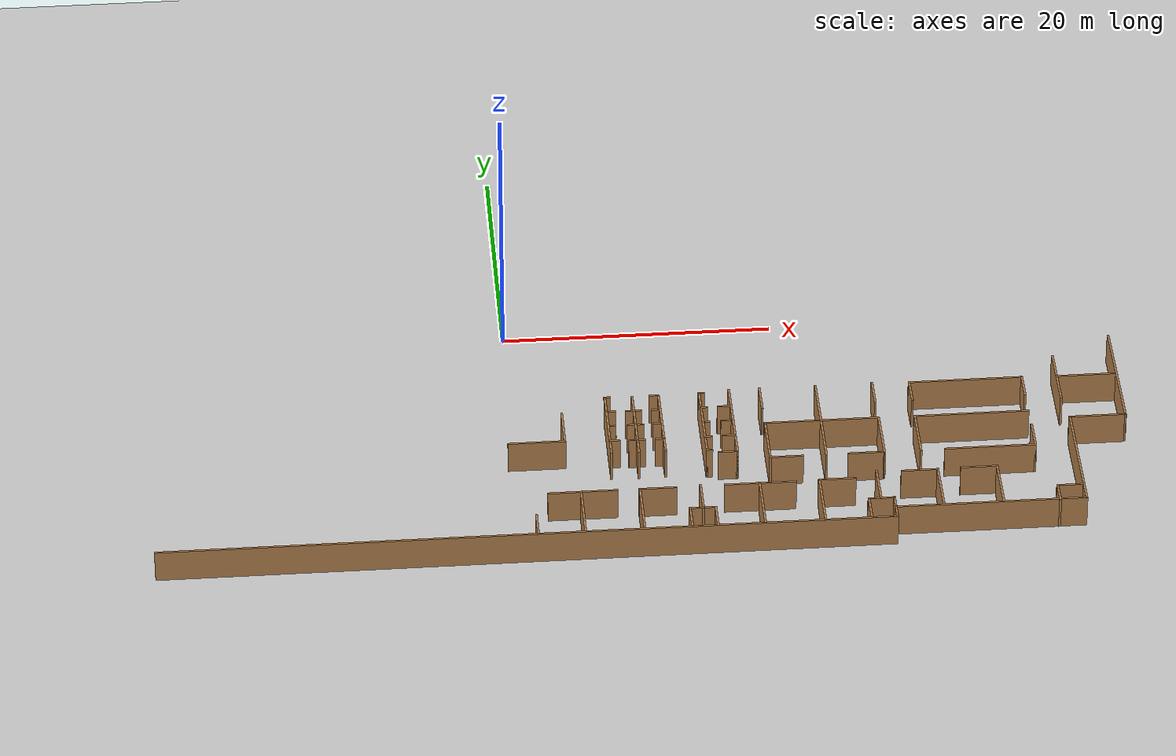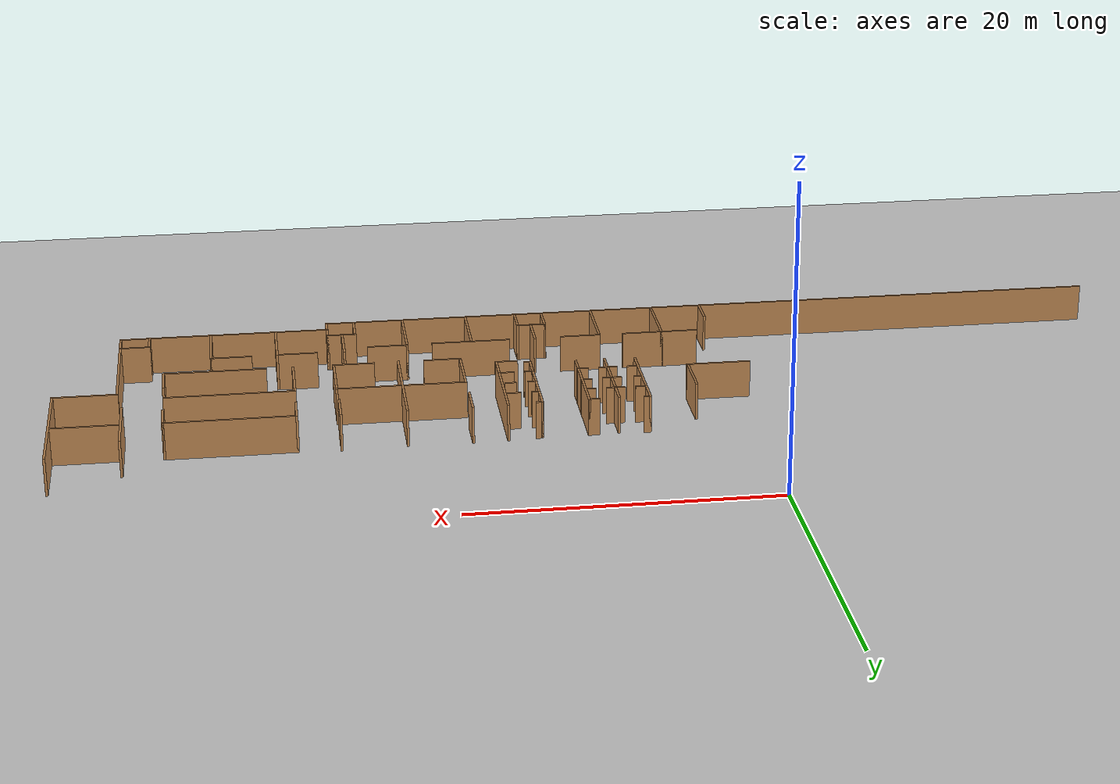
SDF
<sdf version="1.6">
 <world name="default">
  <model name="ground_plane">
   <static>1</static>
   <link name="link">
    <collision name="collision">
     <geometry><plane><normal>0 0 1</normal><size>100 100</size></plane></geometry>
     <surface><friction><ode><mu>100</mu><mu2>50</mu2></ode></friction></surface>
    </collision>
    <visual name="visual">
     <cast_shadows>0</cast_shadows>
     <geometry><plane><normal>0 0 1</normal><size>100 100</size></plane></geometry>
     <material>
      <script><uri>file://media/materials/scripts/gazebo.material</uri><name>Gazebo/Grey</name></script>
     </material>
    </visual>
   </link>
  </model>
  <model name="floor_plan">
   <link name="Wall_16">
    <collision name="Wall_16_Collision">
     <geometry><box><size>9.75 0.15 2.5</size></box></geometry>
     <pose>0 0 1.25 0 -0 0</pose>
    </collision>
    <visual name="Wall_16_Visual">
     <pose>0 0 1.25 0 -0 0</pose>
     <geometry><box><size>9.75 0.15 2.5</size></box></geometry>
     <material>
      <script><uri>file://media/materials/scripts/gazebo.material</uri><name>Gazebo/Wood</name></script>
      <ambient>1 1 1 1</ambient>
     </material>
    </visual>
    <pose>44.75 -10.9786 0 0 0 -1.5708</pose>
   </link>
   <link name="Wall_17">
    <collision name="Wall_17_Collision">
     <geometry><box><size>4.25 0.15 2.5</size></box></geometry>
     <pose>0 0 1.25 0 -0 0</pose>
    </collision>
    <visual name="Wall_17_Visual">
     <pose>0 0 1.25 0 -0 0</pose>
     <geometry><box><size>4.25 0.15 2.5</size></box></geometry>
     <material>
      <script><uri>file://media/materials/scripts/gazebo.material</uri><name>Gazebo/Wood</name></script>
      <ambient>1 1 1 1</ambient>
     </material>
    </visual>
    <pose>42.7 -15.7786 0 0 -0 3.14159</pose>
   </link>
   <link name="Wall_18">
    <collision name="Wall_18_Collision">
     <geometry><box><size>9.75 0.15 2.5</size></box></geometry>
     <pose>0 0 1.25 0 -0 0</pose>
    </collision>
    <visual name="Wall_18_Visual">
     <pose>0 0 1.25 0 -0 0</pose>
     <geometry><box><size>9.75 0.15 2.5</size></box></geometry>
     <material>
      <script><uri>file://media/materials/scripts/gazebo.material</uri><name>Gazebo/Wood</name></script>
      <ambient>1 1 1 1</ambient>
     </material>
    </visual>
    <pose>40.65 -20.5786 0 0 0 -1.5708</pose>
   </link>
   <link name="Wall_19">
    <collision name="Wall_19_Collision">
     <geometry><box><size>14 0.15 2.5</size></box></geometry>
     <pose>0 0 1.25 0 -0 0</pose>
    </collision>
    <visual name="Wall_19_Visual">
     <pose>0 0 1.25 0 -0 0</pose>
     <geometry><box><size>14 0.15 2.5</size></box></geometry>
     <material>
      <script><uri>file://media/materials/scripts/gazebo.material</uri><name>Gazebo/Wood</name></script>
      <ambient>1 1 1 1</ambient>
     </material>
    </visual>
    <pose>33.725 -25.3786 0 0 -0 3.14159</pose>
   </link>
   <link name="Wall_20">
    <collision name="Wall_20_Collision">
     <geometry><box><size>1.25 0.15 2.5</size></box></geometry>
     <pose>0 0 1.25 0 -0 0</pose>
    </collision>
    <visual name="Wall_20_Visual">
     <pose>0 0 1.25 0 -0 0</pose>
     <geometry><box><size>1.25 0.15 2.5</size></box></geometry>
     <material>
      <script><uri>file://media/materials/scripts/gazebo.material</uri><name>Gazebo/Wood</name></script>
      <ambient>1 1 1 1</ambient>
     </material>
    </visual>
    <pose>26.8 -25.9286 0 0 0 -1.5708</pose>
   </link>
   <link name="Wall_21">
    <collision name="Wall_21_Collision">
     <geometry><box><size>53.5 0.15 2.5</size></box></geometry>
     <pose>0 0 1.25 0 -0 0</pose>
    </collision>
    <visual name="Wall_21_Visual">
     <pose>0 0 1.25 0 -0 0</pose>
     <geometry><box><size>53.5 0.15 2.5</size></box></geometry>
     <material>
      <script><uri>file://media/materials/scripts/gazebo.material</uri><name>Gazebo/Wood</name></script>
      <ambient>1 1 1 1</ambient>
     </material>
    </visual>
    <pose>0.125 -26.4786 0 0 -0 3.14159</pose>
   </link>
   <link name="Wall_234">
    <collision name="Wall_234_Collision">
     <geometry><box><size>5.25 0.15 2.5</size></box></geometry>
     <pose>0 0 1.25 0 -0 0</pose>
    </collision>
    <visual name="Wall_234_Visual">
     <pose>0 0 1.25 0 -0 0</pose>
     <geometry><box><size>5.25 0.15 2.5</size></box></geometry>
     <material>
      <script><uri>file://media/materials/scripts/gazebo.material</uri><name>Gazebo/Wood</name></script>
      <ambient>1 1 1 1</ambient>
     </material>
    </visual>
    <pose>40.2991 -10.8994 0 0 0 -1.5708</pose>
   </link>
   <link name="Wall_236">
    <collision name="Wall_236_Collision">
     <geometry><box><size>4.5 0.15 2.5</size></box></geometry>
     <pose>0 0 1.25 0 -0 0</pose>
    </collision>
    <visual name="Wall_236_Visual">
     <pose>0 0 1.25 0 -0 0</pose>
     <geometry><box><size>4.5 0.15 2.5</size></box></geometry>
     <material>
      <script><uri>file://media/materials/scripts/gazebo.material</uri><name>Gazebo/Wood</name></script>
      <ambient>1 1 1 1</ambient>
     </material>
    </visual>
    <pose>42.5224 -10.7998 0 0 -0 0</pose>
   </link>
   <link name="Wall_238">
    <collision name="Wall_238_Collision">
     <geometry><box><size>2 0.15 2.5</size></box></geometry>
     <pose>0 0 1.25 0 -0 0</pose>
    </collision>
    <visual name="Wall_238_Visual">
     <pose>0 0 1.25 0 -0 0</pose>
     <geometry><box><size>2 0.15 2.5</size></box></geometry>
     <material>
      <script><uri>file://media/materials/scripts/gazebo.material</uri><name>Gazebo/Wood</name></script>
      <ambient>1 1 1 1</ambient>
     </material>
    </visual>
    <pose>39.6556 -23.8032 0 0 -0 3.14159</pose>
   </link>
   <link name="Wall_239">
    <collision name="Wall_239_Collision">
     <geometry><box><size>1.75 0.15 2.5</size></box></geometry>
     <pose>0 0 1.25 0 -0 0</pose>
    </collision>
    <visual name="Wall_239_Visual">
     <pose>0 0 1.25 0 -0 0</pose>
     <geometry><box><size>1.75 0.15 2.5</size></box></geometry>
     <material>
      <script><uri>file://media/materials/scripts/gazebo.material</uri><name>Gazebo/Wood</name></script>
      <ambient>1 1 1 1</ambient>
     </material>
    </visual>
    <pose>38.7306 -24.6032 0 0 0 -1.5708</pose>
   </link>
   <link name="Wall_241">
    <collision name="Wall_241_Collision">
     <geometry><box><size>2.5 0.15 2.5</size></box></geometry>
     <pose>0 0 1.25 0 -0 0</pose>
    </collision>
    <visual name="Wall_241_Visual">
     <pose>0 0 1.25 0 -0 0</pose>
     <geometry><box><size>2.5 0.15 2.5</size></box></geometry>
     <material>
      <script><uri>file://media/materials/scripts/gazebo.material</uri><name>Gazebo/Wood</name></script>
      <ambient>1 1 1 1</ambient>
     </material>
    </visual>
    <pose>37.7304 -17.6945 0 0 0 -1.5708</pose>
   </link>
   <link name="Wall_242">
    <collision name="Wall_242_Collision">
     <geometry><box><size>6.75 0.15 2.5</size></box></geometry>
     <pose>0 0 1.25 0 -0 0</pose>
    </collision>
    <visual name="Wall_242_Visual">
     <pose>0 0 1.25 0 -0 0</pose>
     <geometry><box><size>6.75 0.15 2.5</size></box></geometry>
     <material>
      <script><uri>file://media/materials/scripts/gazebo.material</uri><name>Gazebo/Wood</name></script>
      <ambient>1 1 1 1</ambient>
     </material>
    </visual>
    <pose>34.4304 -18.8695 0 0 -0 3.14159</pose>
   </link>
   <link name="Wall_244">
    <collision name="Wall_244_Collision">
     <geometry><box><size>4.25 0.15 2.5</size></box></geometry>
     <pose>0 0 1.25 0 -0 0</pose>
    </collision>
    <visual name="Wall_244_Visual">
     <pose>0 0 1.25 0 -0 0</pose>
     <geometry><box><size>4.25 0.15 2.5</size></box></geometry>
     <material>
      <script><uri>file://media/materials/scripts/gazebo.material</uri><name>Gazebo/Wood</name></script>
      <ambient>1 1 1 1</ambient>
     </material>
    </visual>
    <pose>29.3262 -16.8568 0 0 -0 1.5708</pose>
   </link>
   <link name="Wall_245">
    <collision name="Wall_245_Collision">
     <geometry><box><size>8.5 0.15 2.5</size></box></geometry>
     <pose>0 0 1.25 0 -0 0</pose>
    </collision>
    <visual name="Wall_245_Visual">
     <pose>0 0 1.25 0 -0 0</pose>
     <geometry><box><size>8.5 0.15 2.5</size></box></geometry>
     <material>
      <script><uri>file://media/materials/scripts/gazebo.material</uri><name>Gazebo/Wood</name></script>
      <ambient>1 1 1 1</ambient>
     </material>
    </visual>
    <pose>33.5012 -14.8068 0 0 -0 0</pose>
   </link>
   <link name="Wall_257">
    <collision name="Wall_257_Collision">
     <geometry><box><size>8.5 0.15 2.5</size></box></geometry>
     <pose>0 0 1.25 0 -0 0</pose>
    </collision>
    <visual name="Wall_257_Visual">
     <pose>0 0 1.25 0 -0 0</pose>
     <geometry><box><size>8.5 0.15 2.5</size></box></geometry>
     <material>
      <script><uri>file://media/materials/scripts/gazebo.material</uri><name>Gazebo/Wood</name></script>
      <ambient>1 1 1 1</ambient>
     </material>
    </visual>
    <pose>33.532 -10.7041 0 0 -0 0</pose>
   </link>
   <link name="Wall_260">
    <collision name="Wall_260_Collision">
     <geometry><box><size>2.25 0.15 2.5</size></box></geometry>
     <pose>0 0 1.25 0 -0 0</pose>
    </collision>
    <visual name="Wall_260_Visual">
     <pose>0 0 1.25 0 -0 0</pose>
     <geometry><box><size>2.25 0.15 2.5</size></box></geometry>
     <material>
      <script><uri>file://media/materials/scripts/gazebo.material</uri><name>Gazebo/Wood</name></script>
      <ambient>1 1 1 1</ambient>
     </material>
    </visual>
    <pose>37.707 -11.7541 0 0 0 -1.5708</pose>
   </link>
   <link name="Wall_262">
    <collision name="Wall_262_Collision">
     <geometry><box><size>2.25 0.15 2.5</size></box></geometry>
     <pose>0 0 1.25 0 -0 0</pose>
    </collision>
    <visual name="Wall_262_Visual">
     <pose>0 0 1.25 0 -0 0</pose>
     <geometry><box><size>2.25 0.15 2.5</size></box></geometry>
     <material>
      <script><uri>file://media/materials/scripts/gazebo.material</uri><name>Gazebo/Wood</name></script>
      <ambient>1 1 1 1</ambient>
     </material>
    </visual>
    <pose>29.357 -11.7541 0 0 0 -1.5708</pose>
   </link>
   <link name="Wall_264">
    <collision name="Wall_264_Collision">
     <geometry><box><size>4.25 0.15 2.5</size></box></geometry>
     <pose>0 0 1.25 0 -0 0</pose>
    </collision>
    <visual name="Wall_264_Visual">
     <pose>0 0 1.25 0 -0 0</pose>
     <geometry><box><size>4.25 0.15 2.5</size></box></geometry>
     <material>
      <script><uri>file://media/materials/scripts/gazebo.material</uri><name>Gazebo/Wood</name></script>
      <ambient>1 1 1 1</ambient>
     </material>
    </visual>
    <pose>34.6333 -23.2208 0 0 -0 1.5708</pose>
   </link>
   <link name="Wall_265">
    <collision name="Wall_265_Collision">
     <geometry><box><size>2.75 0.15 2.5</size></box></geometry>
     <pose>0 0 1.25 0 -0 0</pose>
    </collision>
    <visual name="Wall_265_Visual">
     <pose>0 0 1.25 0 -0 0</pose>
     <geometry><box><size>2.75 0.15 2.5</size></box></geometry>
     <material>
      <script><uri>file://media/materials/scripts/gazebo.material</uri><name>Gazebo/Wood</name></script>
      <ambient>1 1 1 1</ambient>
     </material>
    </visual>
    <pose>33.3333 -21.1708 0 0 -0 3.14159</pose>
   </link>
   <link name="Wall_269">
    <collision name="Wall_269_Collision">
     <geometry><box><size>4.25 0.15 2.5</size></box></geometry>
     <pose>0 0 1.25 0 -0 0</pose>
    </collision>
    <visual name="Wall_269_Visual">
     <pose>0 0 1.25 0 -0 0</pose>
     <geometry><box><size>4.25 0.15 2.5</size></box></geometry>
     <material>
      <script><uri>file://media/materials/scripts/gazebo.material</uri><name>Gazebo/Wood</name></script>
      <ambient>1 1 1 1</ambient>
     </material>
    </visual>
    <pose>30.2855 -23.2732 0 0 -0 1.5708</pose>
   </link>
   <link name="Wall_270">
    <collision name="Wall_270_Collision">
     <geometry><box><size>2.75 0.15 2.5</size></box></geometry>
     <pose>0 0 1.25 0 -0 0</pose>
    </collision>
    <visual name="Wall_270_Visual">
     <pose>0 0 1.25 0 -0 0</pose>
     <geometry><box><size>2.75 0.15 2.5</size></box></geometry>
     <material>
      <script><uri>file://media/materials/scripts/gazebo.material</uri><name>Gazebo/Wood</name></script>
      <ambient>1 1 1 1</ambient>
     </material>
    </visual>
    <pose>28.9855 -21.2232 0 0 -0 3.14159</pose>
   </link>
   <link name="Wall_276">
    <collision name="Wall_276_Collision">
     <geometry><box><size>1.25 0.15 2.5</size></box></geometry>
     <pose>0 0 1.25 0 -0 0</pose>
    </collision>
    <visual name="Wall_276_Visual">
     <pose>0 0 1.25 0 -0 0</pose>
     <geometry><box><size>1.25 0.15 2.5</size></box></geometry>
     <material>
      <script><uri>file://media/materials/scripts/gazebo.material</uri><name>Gazebo/Wood</name></script>
      <ambient>1 1 1 1</ambient>
     </material>
    </visual>
    <pose>26.8 -24.8286 0 0 -0 1.5708</pose>
   </link>
   <link name="Wall_278">
    <collision name="Wall_278_Collision">
     <geometry><box><size>2 0.15 2.5</size></box></geometry>
     <pose>0 0 1.25 0 -0 0</pose>
    </collision>
    <visual name="Wall_278_Visual">
     <pose>0 0 1.25 0 -0 0</pose>
     <geometry><box><size>2 0.15 2.5</size></box></geometry>
     <material>
      <script><uri>file://media/materials/scripts/gazebo.material</uri><name>Gazebo/Wood</name></script>
      <ambient>1 1 1 1</ambient>
     </material>
    </visual>
    <pose>25.875 -24.2786 0 0 -0 3.14159</pose>
   </link>
   <link name="Wall_279">
    <collision name="Wall_279_Collision">
     <geometry><box><size>2.25 0.15 2.5</size></box></geometry>
     <pose>0 0 1.25 0 -0 0</pose>
    </collision>
    <visual name="Wall_279_Visual">
     <pose>0 0 1.25 0 -0 0</pose>
     <geometry><box><size>2.25 0.15 2.5</size></box></geometry>
     <material>
      <script><uri>file://media/materials/scripts/gazebo.material</uri><name>Gazebo/Wood</name></script>
      <ambient>1 1 1 1</ambient>
     </material>
    </visual>
    <pose>24.95 -25.3286 0 0 0 -1.5708</pose>
   </link>
   <link name="Wall_281">
    <collision name="Wall_281_Collision">
     <geometry><box><size>3.25 0.15 2.5</size></box></geometry>
     <pose>0 0 1.25 0 -0 0</pose>
    </collision>
    <visual name="Wall_281_Visual">
     <pose>0 0 1.25 0 -0 0</pose>
     <geometry><box><size>3.25 0.15 2.5</size></box></geometry>
     <material>
      <script><uri>file://media/materials/scripts/gazebo.material</uri><name>Gazebo/Wood</name></script>
      <ambient>1 1 1 1</ambient>
     </material>
    </visual>
    <pose>25.8315 -22.6587 0 0 0 -1.5708</pose>
   </link>
   <link name="Wall_283">
    <collision name="Wall_283_Collision">
     <geometry><box><size>4.75 0.15 2.5</size></box></geometry>
     <pose>0 0 1.25 0 -0 0</pose>
    </collision>
    <visual name="Wall_283_Visual">
     <pose>0 0 1.25 0 -0 0</pose>
     <geometry><box><size>4.75 0.15 2.5</size></box></geometry>
     <material>
      <script><uri>file://media/materials/scripts/gazebo.material</uri><name>Gazebo/Wood</name></script>
      <ambient>1 1 1 1</ambient>
     </material>
    </visual>
    <pose>21.6011 -24.0928 0 0 -0 1.5708</pose>
   </link>
   <link name="Wall_284">
    <collision name="Wall_284_Collision">
     <geometry><box><size>2.75 0.15 2.5</size></box></geometry>
     <pose>0 0 1.25 0 -0 0</pose>
    </collision>
    <visual name="Wall_284_Visual">
     <pose>0 0 1.25 0 -0 0</pose>
     <geometry><box><size>2.75 0.15 2.5</size></box></geometry>
     <material>
      <script><uri>file://media/materials/scripts/gazebo.material</uri><name>Gazebo/Wood</name></script>
      <ambient>1 1 1 1</ambient>
     </material>
    </visual>
    <pose>22.9011 -21.7928 0 0 -0 0</pose>
   </link>
   <link name="Wall_286">
    <collision name="Wall_286_Collision">
     <geometry><box><size>5.25 0.15 2.5</size></box></geometry>
     <pose>0 0 1.25 0 -0 0</pose>
    </collision>
    <visual name="Wall_286_Visual">
     <pose>0 0 1.25 0 -0 0</pose>
     <geometry><box><size>5.25 0.15 2.5</size></box></geometry>
     <material>
      <script><uri>file://media/materials/scripts/gazebo.material</uri><name>Gazebo/Wood</name></script>
      <ambient>1 1 1 1</ambient>
     </material>
    </visual>
    <pose>17.3025 -21.8431 0 0 -0 0</pose>
   </link>
   <link name="Wall_288">
    <collision name="Wall_288_Collision">
     <geometry><box><size>4.75 0.15 2.5</size></box></geometry>
     <pose>0 0 1.25 0 -0 0</pose>
    </collision>
    <visual name="Wall_288_Visual">
     <pose>0 0 1.25 0 -0 0</pose>
     <geometry><box><size>4.75 0.15 2.5</size></box></geometry>
     <material>
      <script><uri>file://media/materials/scripts/gazebo.material</uri><name>Gazebo/Wood</name></script>
      <ambient>1 1 1 1</ambient>
     </material>
    </visual>
    <pose>17.2588 -24.175 0 0 0 -1.5708</pose>
   </link>
   <link name="Wall_290">
    <collision name="Wall_290_Collision">
     <geometry><box><size>2.25 0.15 2.5</size></box></geometry>
     <pose>0 0 1.25 0 -0 0</pose>
    </collision>
    <visual name="Wall_290_Visual">
     <pose>0 0 1.25 0 -0 0</pose>
     <geometry><box><size>2.25 0.15 2.5</size></box></geometry>
     <material>
      <script><uri>file://media/materials/scripts/gazebo.material</uri><name>Gazebo/Wood</name></script>
      <ambient>1 1 1 1</ambient>
     </material>
    </visual>
    <pose>13.8425 -25.4226 0 0 -0 1.5708</pose>
   </link>
   <link name="Wall_291">
    <collision name="Wall_291_Collision">
     <geometry><box><size>2 0.15 2.5</size></box></geometry>
     <pose>0 0 1.25 0 -0 0</pose>
    </collision>
    <visual name="Wall_291_Visual">
     <pose>0 0 1.25 0 -0 0</pose>
     <geometry><box><size>2 0.15 2.5</size></box></geometry>
     <material>
      <script><uri>file://media/materials/scripts/gazebo.material</uri><name>Gazebo/Wood</name></script>
      <ambient>1 1 1 1</ambient>
     </material>
    </visual>
    <pose>12.9175 -24.3726 0 0 -0 3.14159</pose>
   </link>
   <link name="Wall_292">
    <collision name="Wall_292_Collision">
     <geometry><box><size>2.25 0.15 2.5</size></box></geometry>
     <pose>0 0 1.25 0 -0 0</pose>
    </collision>
    <visual name="Wall_292_Visual">
     <pose>0 0 1.25 0 -0 0</pose>
     <geometry><box><size>2.25 0.15 2.5</size></box></geometry>
     <material>
      <script><uri>file://media/materials/scripts/gazebo.material</uri><name>Gazebo/Wood</name></script>
      <ambient>1 1 1 1</ambient>
     </material>
    </visual>
    <pose>11.9925 -25.4226 0 0 0 -1.5708</pose>
   </link>
   <link name="Wall_294">
    <collision name="Wall_294_Collision">
     <geometry><box><size>2.75 0.15 2.5</size></box></geometry>
     <pose>0 0 1.25 0 -0 0</pose>
    </collision>
    <visual name="Wall_294_Visual">
     <pose>0 0 1.25 0 -0 0</pose>
     <geometry><box><size>2.75 0.15 2.5</size></box></geometry>
     <material>
      <script><uri>file://media/materials/scripts/gazebo.material</uri><name>Gazebo/Wood</name></script>
      <ambient>1 1 1 1</ambient>
     </material>
    </visual>
    <pose>12.9592 -23.0793 0 0 -0 1.5708</pose>
   </link>
   <link name="Wall_296">
    <collision name="Wall_296_Collision">
     <geometry><box><size>2.75 0.15 2.5</size></box></geometry>
     <pose>0 0 1.25 0 -0 0</pose>
    </collision>
    <visual name="Wall_296_Visual">
     <pose>0 0 1.25 0 -0 0</pose>
     <geometry><box><size>2.75 0.15 2.5</size></box></geometry>
     <material>
      <script><uri>file://media/materials/scripts/gazebo.material</uri><name>Gazebo/Wood</name></script>
      <ambient>1 1 1 1</ambient>
     </material>
    </visual>
    <pose>9.86009 -21.8642 0 0 -0 3.14159</pose>
   </link>
   <link name="Wall_297">
    <collision name="Wall_297_Collision">
     <geometry><box><size>4.75 0.15 2.5</size></box></geometry>
     <pose>0 0 1.25 0 -0 0</pose>
    </collision>
    <visual name="Wall_297_Visual">
     <pose>0 0 1.25 0 -0 0</pose>
     <geometry><box><size>4.75 0.15 2.5</size></box></geometry>
     <material>
      <script><uri>file://media/materials/scripts/gazebo.material</uri><name>Gazebo/Wood</name></script>
      <ambient>1 1 1 1</ambient>
     </material>
    </visual>
    <pose>8.56009 -24.1642 0 0 0 -1.5708</pose>
   </link>
   <link name="Wall_300">
    <collision name="Wall_300_Collision">
     <geometry><box><size>4.75 0.15 2.5</size></box></geometry>
     <pose>0 0 1.25 0 -0 0</pose>
    </collision>
    <visual name="Wall_300_Visual">
     <pose>0 0 1.25 0 -0 0</pose>
     <geometry><box><size>4.75 0.15 2.5</size></box></geometry>
     <material>
      <script><uri>file://media/materials/scripts/gazebo.material</uri><name>Gazebo/Wood</name></script>
      <ambient>1 1 1 1</ambient>
     </material>
    </visual>
    <pose>4.29396 -24.1538 0 0 -0 1.5708</pose>
   </link>
   <link name="Wall_302">
    <collision name="Wall_302_Collision">
     <geometry><box><size>2.5 0.15 2.5</size></box></geometry>
     <pose>0 0 1.25 0 -0 0</pose>
    </collision>
    <visual name="Wall_302_Visual">
     <pose>0 0 1.25 0 -0 0</pose>
     <geometry><box><size>2.5 0.15 2.5</size></box></geometry>
     <material>
      <script><uri>file://media/materials/scripts/gazebo.material</uri><name>Gazebo/Wood</name></script>
      <ambient>1 1 1 1</ambient>
     </material>
    </visual>
    <pose>3.11896 -21.8538 0 0 -0 3.14159</pose>
   </link>
   <link name="Wall_304">
    <collision name="Wall_304_Collision">
     <geometry><box><size>2.75 0.15 2.5</size></box></geometry>
     <pose>0 0 1.25 0 -0 0</pose>
    </collision>
    <visual name="Wall_304_Visual">
     <pose>0 0 1.25 0 -0 0</pose>
     <geometry><box><size>2.75 0.15 2.5</size></box></geometry>
     <material>
      <script><uri>file://media/materials/scripts/gazebo.material</uri><name>Gazebo/Wood</name></script>
      <ambient>1 1 1 1</ambient>
     </material>
    </visual>
    <pose>5.59396 -21.8538 0 0 -0 0</pose>
   </link>
   <link name="Wall_307">
    <collision name="Wall_307_Collision">
     <geometry><box><size>2.25 0.15 2.5</size></box></geometry>
     <pose>0 0 1.25 0 -0 0</pose>
    </collision>
    <visual name="Wall_307_Visual">
     <pose>0 0 1.25 0 -0 0</pose>
     <geometry><box><size>2.25 0.15 2.5</size></box></geometry>
     <material>
      <script><uri>file://media/materials/scripts/gazebo.material</uri><name>Gazebo/Wood</name></script>
      <ambient>1 1 1 1</ambient>
     </material>
    </visual>
    <pose>0.897617 -25.3855 0 0 -0 1.5708</pose>
   </link>
   <link name="Wall_355">
    <collision name="Wall_355_Collision">
     <geometry><box><size>7.5 0.15 2.5</size></box></geometry>
     <pose>0 0 1.25 0 -0 0</pose>
    </collision>
    <visual name="Wall_355_Visual">
     <pose>0 0 1.25 0 -0 0</pose>
     <geometry><box><size>7.5 0.15 2.5</size></box></geometry>
     <material>
      <script><uri>file://media/materials/scripts/gazebo.material</uri><name>Gazebo/Wood</name></script>
      <ambient>1 1 1 1</ambient>
     </material>
    </visual>
    <pose>15.9998 -14.275 0 0 0 -1.5708</pose>
   </link>
   <link name="Wall_356">
    <collision name="Wall_356_Collision">
     <geometry><box><size>1.5 0.15 2.5</size></box></geometry>
     <pose>0 0 1.25 0 -0 0</pose>
    </collision>
    <visual name="Wall_356_Visual">
     <pose>0 0 1.25 0 -0 0</pose>
     <geometry><box><size>1.5 0.15 2.5</size></box></geometry>
     <material>
      <script><uri>file://media/materials/scripts/gazebo.material</uri><name>Gazebo/Wood</name></script>
      <ambient>1 1 1 1</ambient>
     </material>
    </visual>
    <pose>15.3248 -17.95 0 0 -0 3.14159</pose>
   </link>
   <link name="Wall_361">
    <collision name="Wall_361_Collision">
     <geometry><box><size>0.75 0.15 2.5</size></box></geometry>
     <pose>0 0 1.25 0 -0 0</pose>
    </collision>
    <visual name="Wall_361_Visual">
     <pose>0 0 1.25 0 -0 0</pose>
     <geometry><box><size>0.75 0.15 2.5</size></box></geometry>
     <material>
      <script><uri>file://media/materials/scripts/gazebo.material</uri><name>Gazebo/Wood</name></script>
      <ambient>1 1 1 1</ambient>
     </material>
    </visual>
    <pose>15.4696 -14.2231 0 0 -0 3.14159</pose>
   </link>
   <link name="Wall_363">
    <collision name="Wall_363_Collision">
     <geometry><box><size>1 0.15 2.5</size></box></geometry>
     <pose>0 0 1.25 0 -0 0</pose>
    </collision>
    <visual name="Wall_363_Visual">
     <pose>0 0 1.25 0 -0 0</pose>
     <geometry><box><size>1 0.15 2.5</size></box></geometry>
     <material>
      <script><uri>file://media/materials/scripts/gazebo.material</uri><name>Gazebo/Wood</name></script>
      <ambient>1 1 1 1</ambient>
     </material>
    </visual>
    <pose>15.4723 -12.4989 0 0 -0 3.14159</pose>
   </link>
   <link name="Wall_365">
    <collision name="Wall_365_Collision">
     <geometry><box><size>1 0.15 2.5</size></box></geometry>
     <pose>0 0 1.25 0 -0 0</pose>
    </collision>
    <visual name="Wall_365_Visual">
     <pose>0 0 1.25 0 -0 0</pose>
     <geometry><box><size>1 0.15 2.5</size></box></geometry>
     <material>
      <script><uri>file://media/materials/scripts/gazebo.material</uri><name>Gazebo/Wood</name></script>
      <ambient>1 1 1 1</ambient>
     </material>
    </visual>
    <pose>15.5362 -16.011 0 0 -0 3.14159</pose>
   </link>
   <link name="Wall_368">
    <collision name="Wall_368_Collision">
     <geometry><box><size>0.5 0.15 2.5</size></box></geometry>
     <pose>0 0 1.25 0 -0 0</pose>
    </collision>
    <visual name="Wall_368_Visual">
     <pose>0 0 1.25 0 -0 0</pose>
     <geometry><box><size>0.5 0.15 2.5</size></box></geometry>
     <material>
      <script><uri>file://media/materials/scripts/gazebo.material</uri><name>Gazebo/Wood</name></script>
      <ambient>1 1 1 1</ambient>
     </material>
    </visual>
    <pose>13.9663 -10.7748 0 0 -0 3.14159</pose>
   </link>
   <link name="Wall_369">
    <collision name="Wall_369_Collision">
     <geometry><box><size>7 0.15 2.5</size></box></geometry>
     <pose>0 0 1.25 0 -0 0</pose>
    </collision>
    <visual name="Wall_369_Visual">
     <pose>0 0 1.25 0 -0 0</pose>
     <geometry><box><size>7 0.15 2.5</size></box></geometry>
     <material>
      <script><uri>file://media/materials/scripts/gazebo.material</uri><name>Gazebo/Wood</name></script>
      <ambient>1 1 1 1</ambient>
     </material>
    </visual>
    <pose>13.7913 -14.1998 0 0 0 -1.5708</pose>
   </link>
   <link name="Wall_370">
    <collision name="Wall_370_Collision">
     <geometry><box><size>0.5 0.15 2.5</size></box></geometry>
     <pose>0 0 1.25 0 -0 0</pose>
    </collision>
    <visual name="Wall_370_Visual">
     <pose>0 0 1.25 0 -0 0</pose>
     <geometry><box><size>0.5 0.15 2.5</size></box></geometry>
     <material>
      <script><uri>file://media/materials/scripts/gazebo.material</uri><name>Gazebo/Wood</name></script>
      <ambient>1 1 1 1</ambient>
     </material>
    </visual>
    <pose>13.9663 -17.6248 0 0 -0 0</pose>
   </link>
   <link name="Wall_372">
    <collision name="Wall_372_Collision">
     <geometry><box><size>0.5 0.15 2.5</size></box></geometry>
     <pose>0 0 1.25 0 -0 0</pose>
    </collision>
    <visual name="Wall_372_Visual">
     <pose>0 0 1.25 0 -0 0</pose>
     <geometry><box><size>0.5 0.15 2.5</size></box></geometry>
     <material>
      <script><uri>file://media/materials/scripts/gazebo.material</uri><name>Gazebo/Wood</name></script>
      <ambient>1 1 1 1</ambient>
     </material>
    </visual>
    <pose>14.0289 -12.5309 0 0 -0 0</pose>
   </link>
   <link name="Wall_374">
    <collision name="Wall_374_Collision">
     <geometry><box><size>0.5 0.15 2.5</size></box></geometry>
     <pose>0 0 1.25 0 -0 0</pose>
    </collision>
    <visual name="Wall_374_Visual">
     <pose>0 0 1.25 0 -0 0</pose>
     <geometry><box><size>0.5 0.15 2.5</size></box></geometry>
     <material>
      <script><uri>file://media/materials/scripts/gazebo.material</uri><name>Gazebo/Wood</name></script>
      <ambient>1 1 1 1</ambient>
     </material>
    </visual>
    <pose>14.0608 -14.2869 0 0 -0 0</pose>
   </link>
   <link name="Wall_376">
    <collision name="Wall_376_Collision">
     <geometry><box><size>0.5 0.15 2.5</size></box></geometry>
     <pose>0 0 1.25 0 -0 0</pose>
    </collision>
    <visual name="Wall_376_Visual">
     <pose>0 0 1.25 0 -0 0</pose>
     <geometry><box><size>0.5 0.15 2.5</size></box></geometry>
     <material>
      <script><uri>file://media/materials/scripts/gazebo.material</uri><name>Gazebo/Wood</name></script>
      <ambient>1 1 1 1</ambient>
     </material>
    </visual>
    <pose>14.0608 -16.043 0 0 -0 0</pose>
   </link>
   <link name="Wall_380">
    <collision name="Wall_380_Collision">
     <geometry><box><size>6.75 0.15 2.5</size></box></geometry>
     <pose>0 0 1.25 0 -0 0</pose>
    </collision>
    <visual name="Wall_380_Visual">
     <pose>0 0 1.25 0 -0 0</pose>
     <geometry><box><size>6.75 0.15 2.5</size></box></geometry>
     <material>
      <script><uri>file://media/materials/scripts/gazebo.material</uri><name>Gazebo/Wood</name></script>
      <ambient>1 1 1 1</ambient>
     </material>
    </visual>
    <pose>8.8412 -14.1387 0 0 0 -1.5708</pose>
   </link>
   <link name="Wall_382">
    <collision name="Wall_382_Collision">
     <geometry><box><size>1.25 0.15 2.5</size></box></geometry>
     <pose>0 0 1.25 0 -0 0</pose>
    </collision>
    <visual name="Wall_382_Visual">
     <pose>0 0 1.25 0 -0 0</pose>
     <geometry><box><size>1.25 0.15 2.5</size></box></geometry>
     <material>
      <script><uri>file://media/materials/scripts/gazebo.material</uri><name>Gazebo/Wood</name></script>
      <ambient>1 1 1 1</ambient>
     </material>
    </visual>
    <pose>8.81649 -12.5309 0 0 -0 0</pose>
   </link>
   <link name="Wall_384">
    <collision name="Wall_384_Collision">
     <geometry><box><size>1.25 0.15 2.5</size></box></geometry>
     <pose>0 0 1.25 0 -0 0</pose>
    </collision>
    <visual name="Wall_384_Visual">
     <pose>0 0 1.25 0 -0 0</pose>
     <geometry><box><size>1.25 0.15 2.5</size></box></geometry>
     <material>
      <script><uri>file://media/materials/scripts/gazebo.material</uri><name>Gazebo/Wood</name></script>
      <ambient>1 1 1 1</ambient>
     </material>
    </visual>
    <pose>8.81649 -14.2231 0 0 -0 0</pose>
   </link>
   <link name="Wall_386">
    <collision name="Wall_386_Collision">
     <geometry><box><size>1.25 0.15 2.5</size></box></geometry>
     <pose>0 0 1.25 0 -0 0</pose>
    </collision>
    <visual name="Wall_386_Visual">
     <pose>0 0 1.25 0 -0 0</pose>
     <geometry><box><size>1.25 0.15 2.5</size></box></geometry>
     <material>
      <script><uri>file://media/materials/scripts/gazebo.material</uri><name>Gazebo/Wood</name></script>
      <ambient>1 1 1 1</ambient>
     </material>
    </visual>
    <pose>8.81649 -16.043 0 0 -0 0</pose>
   </link>
   <link name="Wall_388">
    <collision name="Wall_388_Collision">
     <geometry><box><size>0.75 0.15 2.5</size></box></geometry>
     <pose>0 0 1.25 0 -0 0</pose>
    </collision>
    <visual name="Wall_388_Visual">
     <pose>0 0 1.25 0 -0 0</pose>
     <geometry><box><size>0.75 0.15 2.5</size></box></geometry>
     <material>
      <script><uri>file://media/materials/scripts/gazebo.material</uri><name>Gazebo/Wood</name></script>
      <ambient>1 1 1 1</ambient>
     </material>
    </visual>
    <pose>10.4822 -10.8068 0 0 -0 0</pose>
   </link>
   <link name="Wall_389">
    <collision name="Wall_389_Collision">
     <geometry><box><size>6.75 0.15 2.5</size></box></geometry>
     <pose>0 0 1.25 0 -0 0</pose>
    </collision>
    <visual name="Wall_389_Visual">
     <pose>0 0 1.25 0 -0 0</pose>
     <geometry><box><size>6.75 0.15 2.5</size></box></geometry>
     <material>
      <script><uri>file://media/materials/scripts/gazebo.material</uri><name>Gazebo/Wood</name></script>
      <ambient>1 1 1 1</ambient>
     </material>
    </visual>
    <pose>10.7822 -14.1068 0 0 0 -1.5708</pose>
   </link>
   <link name="Wall_393">
    <collision name="Wall_393_Collision">
     <geometry><box><size>0.75 0.15 2.5</size></box></geometry>
     <pose>0 0 1.25 0 -0 0</pose>
    </collision>
    <visual name="Wall_393_Visual">
     <pose>0 0 1.25 0 -0 0</pose>
     <geometry><box><size>0.75 0.15 2.5</size></box></geometry>
     <material>
      <script><uri>file://media/materials/scripts/gazebo.material</uri><name>Gazebo/Wood</name></script>
      <ambient>1 1 1 1</ambient>
     </material>
    </visual>
    <pose>10.4888 -12.5309 0 0 -0 3.14159</pose>
   </link>
   <link name="Wall_395">
    <collision name="Wall_395_Collision">
     <geometry><box><size>0.75 0.15 2.5</size></box></geometry>
     <pose>0 0 1.25 0 -0 0</pose>
    </collision>
    <visual name="Wall_395_Visual">
     <pose>0 0 1.25 0 -0 0</pose>
     <geometry><box><size>0.75 0.15 2.5</size></box></geometry>
     <material>
      <script><uri>file://media/materials/scripts/gazebo.material</uri><name>Gazebo/Wood</name></script>
      <ambient>1 1 1 1</ambient>
     </material>
    </visual>
    <pose>10.4888 -14.1592 0 0 -0 3.14159</pose>
   </link>
   <link name="Wall_398">
    <collision name="Wall_398_Collision">
     <geometry><box><size>0.75 0.15 2.5</size></box></geometry>
     <pose>0 0 1.25 0 -0 0</pose>
    </collision>
    <visual name="Wall_398_Visual">
     <pose>0 0 1.25 0 -0 0</pose>
     <geometry><box><size>0.75 0.15 2.5</size></box></geometry>
     <material>
      <script><uri>file://media/materials/scripts/gazebo.material</uri><name>Gazebo/Wood</name></script>
      <ambient>1 1 1 1</ambient>
     </material>
    </visual>
    <pose>10.4888 -16.043 0 0 -0 3.14159</pose>
   </link>
   <link name="Wall_400">
    <collision name="Wall_400_Collision">
     <geometry><box><size>0.5 0.15 2.5</size></box></geometry>
     <pose>0 0 1.25 0 -0 0</pose>
    </collision>
    <visual name="Wall_400_Visual">
     <pose>0 0 1.25 0 -0 0</pose>
     <geometry><box><size>0.5 0.15 2.5</size></box></geometry>
     <material>
      <script><uri>file://media/materials/scripts/gazebo.material</uri><name>Gazebo/Wood</name></script>
      <ambient>1 1 1 1</ambient>
     </material>
    </visual>
    <pose>7.00594 -10.7748 0 0 -0 3.14159</pose>
   </link>
   <link name="Wall_401">
    <collision name="Wall_401_Collision">
     <geometry><box><size>6.75 0.15 2.5</size></box></geometry>
     <pose>0 0 1.25 0 -0 0</pose>
    </collision>
    <visual name="Wall_401_Visual">
     <pose>0 0 1.25 0 -0 0</pose>
     <geometry><box><size>6.75 0.15 2.5</size></box></geometry>
     <material>
      <script><uri>file://media/materials/scripts/gazebo.material</uri><name>Gazebo/Wood</name></script>
      <ambient>1 1 1 1</ambient>
     </material>
    </visual>
    <pose>6.83094 -14.0748 0 0 0 -1.5708</pose>
   </link>
   <link name="Wall_403">
    <collision name="Wall_403_Collision">
     <geometry><box><size>0.75 0.15 2.5</size></box></geometry>
     <pose>0 0 1.25 0 -0 0</pose>
    </collision>
    <visual name="Wall_403_Visual">
     <pose>0 0 1.25 0 -0 0</pose>
     <geometry><box><size>0.75 0.15 2.5</size></box></geometry>
     <material>
      <script><uri>file://media/materials/scripts/gazebo.material</uri><name>Gazebo/Wood</name></script>
      <ambient>1 1 1 1</ambient>
     </material>
    </visual>
    <pose>7.16166 -12.4989 0 0 -0 0</pose>
   </link>
   <link name="Wall_406">
    <collision name="Wall_406_Collision">
     <geometry><box><size>0.75 0.15 2.5</size></box></geometry>
     <pose>0 0 1.25 0 -0 0</pose>
    </collision>
    <visual name="Wall_406_Visual">
     <pose>0 0 1.25 0 -0 0</pose>
     <geometry><box><size>0.75 0.15 2.5</size></box></geometry>
     <material>
      <script><uri>file://media/materials/scripts/gazebo.material</uri><name>Gazebo/Wood</name></script>
      <ambient>1 1 1 1</ambient>
     </material>
    </visual>
    <pose>7.19359 -15.9791 0 0 -0 0</pose>
   </link>
   <link name="Wall_408">
    <collision name="Wall_408_Collision">
     <geometry><box><size>0.5 0.15 2.5</size></box></geometry>
     <pose>0 0 1.25 0 -0 0</pose>
    </collision>
    <visual name="Wall_408_Visual">
     <pose>0 0 1.25 0 -0 0</pose>
     <geometry><box><size>0.5 0.15 2.5</size></box></geometry>
     <material>
      <script><uri>file://media/materials/scripts/gazebo.material</uri><name>Gazebo/Wood</name></script>
      <ambient>1 1 1 1</ambient>
     </material>
    </visual>
    <pose>7.13244 -14.2231 0 0 -0 0</pose>
   </link>
   <link name="Wall_410">
    <collision name="Wall_410_Collision">
     <geometry><box><size>2.5 0.15 2.5</size></box></geometry>
     <pose>0 0 1.25 0 -0 0</pose>
    </collision>
    <visual name="Wall_410_Visual">
     <pose>0 0 1.25 0 -0 0</pose>
     <geometry><box><size>2.5 0.15 2.5</size></box></geometry>
     <material>
      <script><uri>file://media/materials/scripts/gazebo.material</uri><name>Gazebo/Wood</name></script>
      <ambient>1 1 1 1</ambient>
     </material>
    </visual>
    <pose>18.26 -11.739 0 0 -0 1.5708</pose>
   </link>
   <link name="Wall_412">
    <collision name="Wall_412_Collision">
     <geometry><box><size>2.5 0.15 2.5</size></box></geometry>
     <pose>0 0 1.25 0 -0 0</pose>
    </collision>
    <visual name="Wall_412_Visual">
     <pose>0 0 1.25 0 -0 0</pose>
     <geometry><box><size>2.5 0.15 2.5</size></box></geometry>
     <material>
      <script><uri>file://media/materials/scripts/gazebo.material</uri><name>Gazebo/Wood</name></script>
      <ambient>1 1 1 1</ambient>
     </material>
    </visual>
    <pose>26.61 -11.739 0 0 0 -1.5708</pose>
   </link>
   <link name="Wall_414">
    <collision name="Wall_414_Collision">
     <geometry><box><size>8.5 0.15 2.5</size></box></geometry>
     <pose>0 0 1.25 0 -0 0</pose>
    </collision>
    <visual name="Wall_414_Visual">
     <pose>0 0 1.25 0 -0 0</pose>
     <geometry><box><size>8.5 0.15 2.5</size></box></geometry>
     <material>
      <script><uri>file://media/materials/scripts/gazebo.material</uri><name>Gazebo/Wood</name></script>
      <ambient>1 1 1 1</ambient>
     </material>
    </visual>
    <pose>22.4821 -14.7658 0 0 -0 3.14159</pose>
   </link>
   <link name="Wall_415">
    <collision name="Wall_415_Collision">
     <geometry><box><size>4.25 0.15 2.5</size></box></geometry>
     <pose>0 0 1.25 0 -0 0</pose>
    </collision>
    <visual name="Wall_415_Visual">
     <pose>0 0 1.25 0 -0 0</pose>
     <geometry><box><size>4.25 0.15 2.5</size></box></geometry>
     <material>
      <script><uri>file://media/materials/scripts/gazebo.material</uri><name>Gazebo/Wood</name></script>
      <ambient>1 1 1 1</ambient>
     </material>
    </visual>
    <pose>18.3071 -16.8158 0 0 0 -1.5708</pose>
   </link>
   <link name="Wall_416">
    <collision name="Wall_416_Collision">
     <geometry><box><size>2.5 0.15 2.5</size></box></geometry>
     <pose>0 0 1.25 0 -0 0</pose>
    </collision>
    <visual name="Wall_416_Visual">
     <pose>0 0 1.25 0 -0 0</pose>
     <geometry><box><size>2.5 0.15 2.5</size></box></geometry>
     <material>
      <script><uri>file://media/materials/scripts/gazebo.material</uri><name>Gazebo/Wood</name></script>
      <ambient>1 1 1 1</ambient>
     </material>
    </visual>
    <pose>19.4821 -18.8658 0 0 -0 0</pose>
   </link>
   <link name="Wall_418">
    <collision name="Wall_418_Collision">
     <geometry><box><size>8.45 0.15 2.5</size></box></geometry>
     <pose>0 0 1.25 0 -0 0</pose>
    </collision>
    <visual name="Wall_418_Visual">
     <pose>0 0 1.25 0 -0 0</pose>
     <geometry><box><size>8.45 0.15 2.5</size></box></geometry>
     <material>
      <script><uri>file://media/materials/scripts/gazebo.material</uri><name>Gazebo/Wood</name></script>
      <ambient>1 1 1 1</ambient>
     </material>
    </visual>
    <pose>22.4106 -14.7652 0 0 0 -1.5708</pose>
   </link>
   <link name="Wall_420">
    <collision name="Wall_420_Collision">
     <geometry><box><size>4.25 0.15 2.5</size></box></geometry>
     <pose>0 0 1.25 0 -0 0</pose>
    </collision>
    <visual name="Wall_420_Visual">
     <pose>0 0 1.25 0 -0 0</pose>
     <geometry><box><size>4.25 0.15 2.5</size></box></geometry>
     <material>
      <script><uri>file://media/materials/scripts/gazebo.material</uri><name>Gazebo/Wood</name></script>
      <ambient>1 1 1 1</ambient>
     </material>
    </visual>
    <pose>26.6571 -16.8158 0 0 0 -1.5708</pose>
   </link>
   <link name="Wall_421">
    <collision name="Wall_421_Collision">
     <geometry><box><size>2.75 0.15 2.5</size></box></geometry>
     <pose>0 0 1.25 0 -0 0</pose>
    </collision>
    <visual name="Wall_421_Visual">
     <pose>0 0 1.25 0 -0 0</pose>
     <geometry><box><size>2.75 0.15 2.5</size></box></geometry>
     <material>
      <script><uri>file://media/materials/scripts/gazebo.material</uri><name>Gazebo/Wood</name></script>
      <ambient>1 1 1 1</ambient>
     </material>
    </visual>
    <pose>25.3571 -18.8658 0 0 -0 3.14159</pose>
   </link>
   <link name="Wall_506">
    <collision name="Wall_506_Collision">
     <geometry><box><size>3.5 0.15 2.5</size></box></geometry>
     <pose>0 0 1.25 0 -0 0</pose>
    </collision>
    <visual name="Wall_506_Visual">
     <pose>0 0 1.25 0 -0 0</pose>
     <geometry><box><size>3.5 0.15 2.5</size></box></geometry>
     <material>
      <script><uri>file://media/materials/scripts/gazebo.material</uri><name>Gazebo/Wood</name></script>
      <ambient>1 1 1 1</ambient>
     </material>
    </visual>
    <pose>3.53898 -14.1035 0 0 0 -1.5708</pose>
   </link>
   <link name="Wall_507">
    <collision name="Wall_507_Collision">
     <geometry><box><size>4.25 0.15 2.5</size></box></geometry>
     <pose>0 0 1.25 0 -0 0</pose>
    </collision>
    <visual name="Wall_507_Visual">
     <pose>0 0 1.25 0 -0 0</pose>
     <geometry><box><size>4.25 0.15 2.5</size></box></geometry>
     <material>
      <script><uri>file://media/materials/scripts/gazebo.material</uri><name>Gazebo/Wood</name></script>
      <ambient>1 1 1 1</ambient>
     </material>
    </visual>
    <pose>1.48898 -15.7785 0 0 -0 3.14159</pose>
   </link>
   <static>1</static>
  </model>
 </world>
</sdf>
